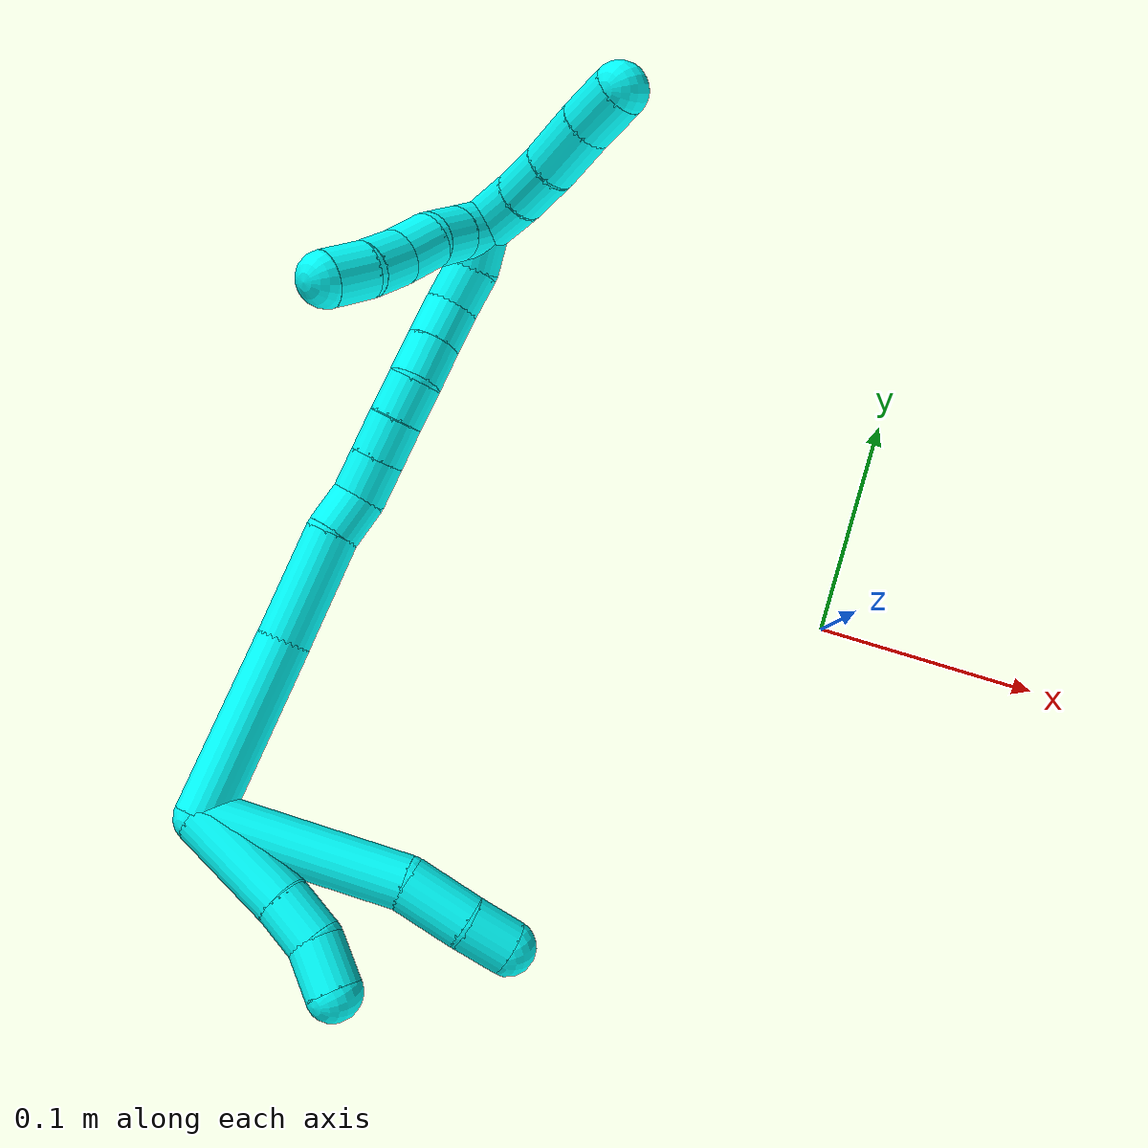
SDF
<sdf version="1.7">
 <world name="default">
  <model name="3">
   <static>0</static>
   <link name="3">
    <collision name="collision-cylinder-e_1_2_8">
     <pose>0.043577 0.004981 -0.019403 -2.89033 1.1399 -2.75246</pose>
     <geometry><cylinder><radius>0.0125</radius><length>0.095922</length></cylinder></geometry>
     <surface>
      <friction><ode><mu>1.16</mu><mu2>1.16</mu2><slip1>0</slip1><slip2>0</slip2></ode></friction>
      <contact><ode><kp>1e+06</kp><kd>1</kd><max_vel>0</max_vel><min_depth>0.001</min_depth></ode></contact>
     </surface>
    </collision>
    <visual name="visual-cylinder-e_1_2_8">
     <pose>0.043577 0.004981 -0.019403 -2.89033 1.1399 -2.75246</pose>
     <geometry><cylinder><radius>0.0125</radius><length>0.095922</length></cylinder></geometry>
     <material><ambient>0.003922 1 0.996078 1</ambient></material>
    </visual>
    <collision name="collision-cylinder-e_2_8_9">
     <pose>0.102071 0.007515 -0.043701 2.67805 1.21924 2.48978</pose>
     <geometry><cylinder><radius>0.0125</radius><length>0.031779</length></cylinder></geometry>
     <surface>
      <friction><ode><mu>1.16</mu><mu2>1.16</mu2><slip1>0</slip1><slip2>0</slip2></ode></friction>
      <contact><ode><kp>1e+06</kp><kd>1</kd><max_vel>0</max_vel><min_depth>0.001</min_depth></ode></contact>
     </surface>
    </collision>
    <visual name="visual-cylinder-e_2_8_9">
     <pose>0.102071 0.007515 -0.043701 2.67805 1.21924 2.48978</pose>
     <geometry><cylinder><radius>0.0125</radius><length>0.031779</length></cylinder></geometry>
     <material><ambient>0.003922 1 0.996078 1</ambient></material>
    </visual>
    <collision name="collision-cylinder-e_3_9_6">
     <pose>0.126772 0.002509 -0.053292 2.64262 1.07051 2.32994</pose>
     <geometry><cylinder><radius>0.0125</radius><length>0.022299</length></cylinder></geometry>
     <surface>
      <friction><ode><mu>1.16</mu><mu2>1.16</mu2><slip1>0</slip1><slip2>0</slip2></ode></friction>
      <contact><ode><kp>1e+06</kp><kd>1</kd><max_vel>0</max_vel><min_depth>0.001</min_depth></ode></contact>
     </surface>
    </collision>
    <visual name="visual-cylinder-e_3_9_6">
     <pose>0.126772 0.002509 -0.053292 2.64262 1.07051 2.32994</pose>
     <geometry><cylinder><radius>0.0125</radius><length>0.022299</length></cylinder></geometry>
     <material><ambient>0.003922 1 0.996078 1</ambient></material>
    </visual>
    <collision name="collision-cylinder-e_1_2_10">
     <pose>0.0265 -0.003639 -0.000748 1.77363 1.43152 1.63526</pose>
     <geometry><cylinder><radius>0.0125</radius><length>0.053519</length></cylinder></geometry>
     <surface>
      <friction><ode><mu>1.16</mu><mu2>1.16</mu2><slip1>0</slip1><slip2>0</slip2></ode></friction>
      <contact><ode><kp>1e+06</kp><kd>1</kd><max_vel>0</max_vel><min_depth>0.001</min_depth></ode></contact>
     </surface>
    </collision>
    <visual name="visual-cylinder-e_1_2_10">
     <pose>0.0265 -0.003639 -0.000748 1.77363 1.43152 1.63526</pose>
     <geometry><cylinder><radius>0.0125</radius><length>0.053519</length></cylinder></geometry>
     <material><ambient>0.003922 1 0.996078 1</ambient></material>
    </visual>
    <collision name="collision-cylinder-e_2_10_11">
     <pose>0.064219 -0.009768 -0.001286 1.48623 1.35159 1.2698</pose>
     <geometry><cylinder><radius>0.0125</radius><length>0.022987</length></cylinder></geometry>
     <surface>
      <friction><ode><mu>1.16</mu><mu2>1.16</mu2><slip1>0</slip1><slip2>0</slip2></ode></friction>
      <contact><ode><kp>1e+06</kp><kd>1</kd><max_vel>0</max_vel><min_depth>0.001</min_depth></ode></contact>
     </surface>
    </collision>
    <visual name="visual-cylinder-e_2_10_11">
     <pose>0.064219 -0.009768 -0.001286 1.48623 1.35159 1.2698</pose>
     <geometry><cylinder><radius>0.0125</radius><length>0.022987</length></cylinder></geometry>
     <material><ambient>0.003922 1 0.996078 1</ambient></material>
    </visual>
    <collision name="collision-cylinder-e_3_11_5">
     <pose>0.085776 -0.017138 0.00163 1.06472 1.07594 0.676015</pose>
     <geometry><cylinder><radius>0.0125</radius><length>0.023494</length></cylinder></geometry>
     <surface>
      <friction><ode><mu>1.16</mu><mu2>1.16</mu2><slip1>0</slip1><slip2>0</slip2></ode></friction>
      <contact><ode><kp>1e+06</kp><kd>1</kd><max_vel>0</max_vel><min_depth>0.001</min_depth></ode></contact>
     </surface>
    </collision>
    <visual name="visual-cylinder-e_3_11_5">
     <pose>0.085776 -0.017138 0.00163 1.06472 1.07594 0.676015</pose>
     <geometry><cylinder><radius>0.0125</radius><length>0.023494</length></cylinder></geometry>
     <material><ambient>0.003922 1 0.996078 1</ambient></material>
    </visual>
    <collision name="collision-cylinder-e_1_2_12">
     <pose>-0.011441 0.031924 -0.025971 -2.25373 -0.271159 0.558668</pose>
     <geometry><cylinder><radius>0.0125</radius><length>0.085429</length></cylinder></geometry>
     <surface>
      <friction><ode><mu>1.16</mu><mu2>1.16</mu2><slip1>0</slip1><slip2>0</slip2></ode></friction>
      <contact><ode><kp>1e+06</kp><kd>1</kd><max_vel>0</max_vel><min_depth>0.001</min_depth></ode></contact>
     </surface>
    </collision>
    <visual name="visual-cylinder-e_1_2_12">
     <pose>-0.011441 0.031924 -0.025971 -2.25373 -0.271159 0.558668</pose>
     <geometry><cylinder><radius>0.0125</radius><length>0.085429</length></cylinder></geometry>
     <material><ambient>0.003922 1 0.996078 1</ambient></material>
    </visual>
    <collision name="collision-cylinder-e_2_12_13">
     <pose>-0.02857 0.08603 -0.06599 -2.13537 -0.213327 0.384298</pose>
     <geometry><cylinder><radius>0.0125</radius><length>0.05373</length></cylinder></geometry>
     <surface>
      <friction><ode><mu>1.16</mu><mu2>1.16</mu2><slip1>0</slip1><slip2>0</slip2></ode></friction>
      <contact><ode><kp>1e+06</kp><kd>1</kd><max_vel>0</max_vel><min_depth>0.001</min_depth></ode></contact>
     </surface>
    </collision>
    <visual name="visual-cylinder-e_2_12_13">
     <pose>-0.02857 0.08603 -0.06599 -2.13537 -0.213327 0.384298</pose>
     <geometry><cylinder><radius>0.0125</radius><length>0.05373</length></cylinder></geometry>
     <material><ambient>0.003922 1 0.996078 1</ambient></material>
    </visual>
    <collision name="collision-cylinder-e_3_13_14">
     <pose>-0.035227 0.115662 -0.087139 -2.33209 -0.093942 0.21857</pose>
     <geometry><cylinder><radius>0.0125</radius><length>0.020674</length></cylinder></geometry>
     <surface>
      <friction><ode><mu>1.16</mu><mu2>1.16</mu2><slip1>0</slip1><slip2>0</slip2></ode></friction>
      <contact><ode><kp>1e+06</kp><kd>1</kd><max_vel>0</max_vel><min_depth>0.001</min_depth></ode></contact>
     </surface>
    </collision>
    <visual name="visual-cylinder-e_3_13_14">
     <pose>-0.035227 0.115662 -0.087139 -2.33209 -0.093942 0.21857</pose>
     <geometry><cylinder><radius>0.0125</radius><length>0.020674</length></cylinder></geometry>
     <material><ambient>0.003922 1 0.996078 1</ambient></material>
    </visual>
    <collision name="collision-cylinder-e_4_14_15">
     <pose>-0.037512 0.132016 -0.098682 -2.03368 -0.131445 0.21201</pose>
     <geometry><cylinder><radius>0.0125</radius><length>0.020075</length></cylinder></geometry>
     <surface>
      <friction><ode><mu>1.16</mu><mu2>1.16</mu2><slip1>0</slip1><slip2>0</slip2></ode></friction>
      <contact><ode><kp>1e+06</kp><kd>1</kd><max_vel>0</max_vel><min_depth>0.001</min_depth></ode></contact>
     </surface>
    </collision>
    <visual name="visual-cylinder-e_4_14_15">
     <pose>-0.037512 0.132016 -0.098682 -2.03368 -0.131445 0.21201</pose>
     <geometry><cylinder><radius>0.0125</radius><length>0.020075</length></cylinder></geometry>
     <material><ambient>0.003922 1 0.996078 1</ambient></material>
    </visual>
    <collision name="collision-cylinder-e_5_15_16">
     <pose>-0.040174 0.149808 -0.107563 -2.03391 -0.134635 0.217186</pose>
     <geometry><cylinder><radius>0.0125</radius><length>0.020049</length></cylinder></geometry>
     <surface>
      <friction><ode><mu>1.16</mu><mu2>1.16</mu2><slip1>0</slip1><slip2>0</slip2></ode></friction>
      <contact><ode><kp>1e+06</kp><kd>1</kd><max_vel>0</max_vel><min_depth>0.001</min_depth></ode></contact>
     </surface>
    </collision>
    <visual name="visual-cylinder-e_5_15_16">
     <pose>-0.040174 0.149808 -0.107563 -2.03391 -0.134635 0.217186</pose>
     <geometry><cylinder><radius>0.0125</radius><length>0.020049</length></cylinder></geometry>
     <material><ambient>0.003922 1 0.996078 1</ambient></material>
    </visual>
    <collision name="collision-cylinder-e_6_16_17">
     <pose>-0.042936 0.167344 -0.116853 -2.08209 -0.141949 0.241633</pose>
     <geometry><cylinder><radius>0.0125</radius><length>0.020037</length></cylinder></geometry>
     <surface>
      <friction><ode><mu>1.16</mu><mu2>1.16</mu2><slip1>0</slip1><slip2>0</slip2></ode></friction>
      <contact><ode><kp>1e+06</kp><kd>1</kd><max_vel>0</max_vel><min_depth>0.001</min_depth></ode></contact>
     </surface>
    </collision>
    <visual name="visual-cylinder-e_6_16_17">
     <pose>-0.042936 0.167344 -0.116853 -2.08209 -0.141949 0.241633</pose>
     <geometry><cylinder><radius>0.0125</radius><length>0.020037</length></cylinder></geometry>
     <material><ambient>0.003922 1 0.996078 1</ambient></material>
    </visual>
    <collision name="collision-cylinder-e_7_17_18">
     <pose>-0.046854 0.183509 -0.127811 -2.25304 -0.252743 0.521641</pose>
     <geometry><cylinder><radius>0.0125</radius><length>0.02</length></cylinder></geometry>
     <surface>
      <friction><ode><mu>1.16</mu><mu2>1.16</mu2><slip1>0</slip1><slip2>0</slip2></ode></friction>
      <contact><ode><kp>1e+06</kp><kd>1</kd><max_vel>0</max_vel><min_depth>0.001</min_depth></ode></contact>
     </surface>
    </collision>
    <visual name="visual-cylinder-e_7_17_18">
     <pose>-0.046854 0.183509 -0.127811 -2.25304 -0.252743 0.521641</pose>
     <geometry><cylinder><radius>0.0125</radius><length>0.02</length></cylinder></geometry>
     <material><ambient>0.003922 1 0.996078 1</ambient></material>
    </visual>
    <collision name="collision-cylinder-e_8_18_19">
     <pose>-0.05172 0.198463 -0.140168 -2.26963 -0.238716 0.503907</pose>
     <geometry><cylinder><radius>0.0125</radius><length>0.020002</length></cylinder></geometry>
     <surface>
      <friction><ode><mu>1.16</mu><mu2>1.16</mu2><slip1>0</slip1><slip2>0</slip2></ode></friction>
      <contact><ode><kp>1e+06</kp><kd>1</kd><max_vel>0</max_vel><min_depth>0.001</min_depth></ode></contact>
     </surface>
    </collision>
    <visual name="visual-cylinder-e_8_18_19">
     <pose>-0.05172 0.198463 -0.140168 -2.26963 -0.238716 0.503907</pose>
     <geometry><cylinder><radius>0.0125</radius><length>0.020002</length></cylinder></geometry>
     <material><ambient>0.003922 1 0.996078 1</ambient></material>
    </visual>
    <collision name="collision-cylinder-e_9_19_20">
     <pose>-0.05494 0.214719 -0.151062 -2.05553 -0.085685 0.141816</pose>
     <geometry><cylinder><radius>0.0125</radius><length>0.020001</length></cylinder></geometry>
     <surface>
      <friction><ode><mu>1.16</mu><mu2>1.16</mu2><slip1>0</slip1><slip2>0</slip2></ode></friction>
      <contact><ode><kp>1e+06</kp><kd>1</kd><max_vel>0</max_vel><min_depth>0.001</min_depth></ode></contact>
     </surface>
    </collision>
    <visual name="visual-cylinder-e_9_19_20">
     <pose>-0.05494 0.214719 -0.151062 -2.05553 -0.085685 0.141816</pose>
     <geometry><cylinder><radius>0.0125</radius><length>0.020001</length></cylinder></geometry>
     <material><ambient>0.003922 1 0.996078 1</ambient></material>
    </visual>
    <collision name="collision-cylinder-e_10_20_1">
     <pose>-0.057903 0.233034 -0.158016 -1.80943 -0.212276 0.269484</pose>
     <geometry><cylinder><radius>0.0125</radius><length>0.020003</length></cylinder></geometry>
     <surface>
      <friction><ode><mu>1.16</mu><mu2>1.16</mu2><slip1>0</slip1><slip2>0</slip2></ode></friction>
      <contact><ode><kp>1e+06</kp><kd>1</kd><max_vel>0</max_vel><min_depth>0.001</min_depth></ode></contact>
     </surface>
    </collision>
    <visual name="visual-cylinder-e_10_20_1">
     <pose>-0.057903 0.233034 -0.158016 -1.80943 -0.212276 0.269484</pose>
     <geometry><cylinder><radius>0.0125</radius><length>0.020003</length></cylinder></geometry>
     <material><ambient>0.003922 1 0.996078 1</ambient></material>
    </visual>
    <collision name="collision-cylinder-e_1_1_21">
     <pose>-0.052143 0.254415 -0.159265 -1.48169 0.583081 -0.535755</pose>
     <geometry><cylinder><radius>0.0125</radius><length>0.028579</length></cylinder></geometry>
     <surface>
      <friction><ode><mu>1.16</mu><mu2>1.16</mu2><slip1>0</slip1><slip2>0</slip2></ode></friction>
      <contact><ode><kp>1e+06</kp><kd>1</kd><max_vel>0</max_vel><min_depth>0.001</min_depth></ode></contact>
     </surface>
    </collision>
    <visual name="visual-cylinder-e_1_1_21">
     <pose>-0.052143 0.254415 -0.159265 -1.48169 0.583081 -0.535755</pose>
     <geometry><cylinder><radius>0.0125</radius><length>0.028579</length></cylinder></geometry>
     <material><ambient>0.003922 1 0.996078 1</ambient></material>
    </visual>
    <collision name="collision-cylinder-e_2_21_22">
     <pose>-0.038849 0.276012 -0.157514 -1.49995 0.508288 -0.474831</pose>
     <geometry><cylinder><radius>0.0125</radius><length>0.022298</length></cylinder></geometry>
     <surface>
      <friction><ode><mu>1.16</mu><mu2>1.16</mu2><slip1>0</slip1><slip2>0</slip2></ode></friction>
      <contact><ode><kp>1e+06</kp><kd>1</kd><max_vel>0</max_vel><min_depth>0.001</min_depth></ode></contact>
     </surface>
    </collision>
    <visual name="visual-cylinder-e_2_21_22">
     <pose>-0.038849 0.276012 -0.157514 -1.49995 0.508288 -0.474831</pose>
     <geometry><cylinder><radius>0.0125</radius><length>0.022298</length></cylinder></geometry>
     <material><ambient>0.003922 1 0.996078 1</ambient></material>
    </visual>
    <collision name="collision-cylinder-e_3_22_23">
     <pose>-0.027937 0.297871 -0.156633 -1.55503 0.424254 -0.417808</pose>
     <geometry><cylinder><radius>0.0125</radius><length>0.026655</length></cylinder></geometry>
     <surface>
      <friction><ode><mu>1.16</mu><mu2>1.16</mu2><slip1>0</slip1><slip2>0</slip2></ode></friction>
      <contact><ode><kp>1e+06</kp><kd>1</kd><max_vel>0</max_vel><min_depth>0.001</min_depth></ode></contact>
     </surface>
    </collision>
    <visual name="visual-cylinder-e_3_22_23">
     <pose>-0.027937 0.297871 -0.156633 -1.55503 0.424254 -0.417808</pose>
     <geometry><cylinder><radius>0.0125</radius><length>0.026655</length></cylinder></geometry>
     <material><ambient>0.003922 1 0.996078 1</ambient></material>
    </visual>
    <collision name="collision-cylinder-e_4_23_4">
     <pose>-0.017396 0.320048 -0.156368 -1.56345 0.466677 -0.463383</pose>
     <geometry><cylinder><radius>0.0125</radius><length>0.022468</length></cylinder></geometry>
     <surface>
      <friction><ode><mu>1.16</mu><mu2>1.16</mu2><slip1>0</slip1><slip2>0</slip2></ode></friction>
      <contact><ode><kp>1e+06</kp><kd>1</kd><max_vel>0</max_vel><min_depth>0.001</min_depth></ode></contact>
     </surface>
    </collision>
    <visual name="visual-cylinder-e_4_23_4">
     <pose>-0.017396 0.320048 -0.156368 -1.56345 0.466677 -0.463383</pose>
     <geometry><cylinder><radius>0.0125</radius><length>0.022468</length></cylinder></geometry>
     <material><ambient>0.003922 1 0.996078 1</ambient></material>
    </visual>
    <collision name="collision-cylinder-e_1_1_24">
     <pose>-0.059556 0.242064 -0.150348 0.047065 0.045473 0.00107</pose>
     <geometry><cylinder><radius>0.0125</radius><length>0.02</length></cylinder></geometry>
     <surface>
      <friction><ode><mu>1.16</mu><mu2>1.16</mu2><slip1>0</slip1><slip2>0</slip2></ode></friction>
      <contact><ode><kp>1e+06</kp><kd>1</kd><max_vel>0</max_vel><min_depth>0.001</min_depth></ode></contact>
     </surface>
    </collision>
    <visual name="visual-cylinder-e_1_1_24">
     <pose>-0.059556 0.242064 -0.150348 0.047065 0.045473 0.00107</pose>
     <geometry><cylinder><radius>0.0125</radius><length>0.02</length></cylinder></geometry>
     <material><ambient>0.003922 1 0.996078 1</ambient></material>
    </visual>
    <collision name="collision-cylinder-e_2_24_25">
     <pose>-0.0584 0.241399 -0.130396 0.01956 0.070241 0.000687</pose>
     <geometry><cylinder><radius>0.0125</radius><length>0.02</length></cylinder></geometry>
     <surface>
      <friction><ode><mu>1.16</mu><mu2>1.16</mu2><slip1>0</slip1><slip2>0</slip2></ode></friction>
      <contact><ode><kp>1e+06</kp><kd>1</kd><max_vel>0</max_vel><min_depth>0.001</min_depth></ode></contact>
     </surface>
    </collision>
    <visual name="visual-cylinder-e_2_24_25">
     <pose>-0.0584 0.241399 -0.130396 0.01956 0.070241 0.000687</pose>
     <geometry><cylinder><radius>0.0125</radius><length>0.02</length></cylinder></geometry>
     <material><ambient>0.003922 1 0.996078 1</ambient></material>
    </visual>
    <collision name="collision-cylinder-e_3_25_26">
     <pose>-0.057774 0.238006 -0.110948 0.325511 -0.007641 -0.001255</pose>
     <geometry><cylinder><radius>0.0125</radius><length>0.02</length></cylinder></geometry>
     <surface>
      <friction><ode><mu>1.16</mu><mu2>1.16</mu2><slip1>0</slip1><slip2>0</slip2></ode></friction>
      <contact><ode><kp>1e+06</kp><kd>1</kd><max_vel>0</max_vel><min_depth>0.001</min_depth></ode></contact>
     </surface>
    </collision>
    <visual name="visual-cylinder-e_3_25_26">
     <pose>-0.057774 0.238006 -0.110948 0.325511 -0.007641 -0.001255</pose>
     <geometry><cylinder><radius>0.0125</radius><length>0.02</length></cylinder></geometry>
     <material><ambient>0.003922 1 0.996078 1</ambient></material>
    </visual>
    <collision name="collision-cylinder-e_4_26_27">
     <pose>-0.057333 0.233364 -0.091592 0.145106 0.051801 0.003766</pose>
     <geometry><cylinder><radius>0.0125</radius><length>0.02</length></cylinder></geometry>
     <surface>
      <friction><ode><mu>1.16</mu><mu2>1.16</mu2><slip1>0</slip1><slip2>0</slip2></ode></friction>
      <contact><ode><kp>1e+06</kp><kd>1</kd><max_vel>0</max_vel><min_depth>0.001</min_depth></ode></contact>
     </surface>
    </collision>
    <visual name="visual-cylinder-e_4_26_27">
     <pose>-0.057333 0.233364 -0.091592 0.145106 0.051801 0.003766</pose>
     <geometry><cylinder><radius>0.0125</radius><length>0.02</length></cylinder></geometry>
     <material><ambient>0.003922 1 0.996078 1</ambient></material>
    </visual>
    <collision name="collision-cylinder-e_5_27_3">
     <pose>-0.058693 0.229933 -0.072092 0.203745 -0.188949 -0.019373</pose>
     <geometry><cylinder><radius>0.0125</radius><length>0.02</length></cylinder></geometry>
     <surface>
      <friction><ode><mu>1.16</mu><mu2>1.16</mu2><slip1>0</slip1><slip2>0</slip2></ode></friction>
      <contact><ode><kp>1e+06</kp><kd>1</kd><max_vel>0</max_vel><min_depth>0.001</min_depth></ode></contact>
     </surface>
    </collision>
    <visual name="visual-cylinder-e_5_27_3">
     <pose>-0.058693 0.229933 -0.072092 0.203745 -0.188949 -0.019373</pose>
     <geometry><cylinder><radius>0.0125</radius><length>0.02</length></cylinder></geometry>
     <material><ambient>0.003922 1 0.996078 1</ambient></material>
    </visual>
    <collision name="collision-sphere-3">
     <pose>-0.060571 0.227945 -0.062473 0 -0 0</pose>
     <geometry><sphere><radius>0.0125</radius></sphere></geometry>
     <surface>
      <friction><ode><mu>1.16</mu><mu2>1.16</mu2><slip1>0</slip1><slip2>0</slip2></ode></friction>
      <contact><ode><kp>1e+06</kp><kd>1</kd><max_vel>0</max_vel><min_depth>0.001</min_depth></ode></contact>
     </surface>
    </collision>
    <visual name="visual-sphere-3">
     <pose>-0.060571 0.227945 -0.062473 0 -0 0</pose>
     <geometry><sphere><radius>0.0125</radius></sphere></geometry>
     <material><ambient>0.003922 1 0.996078 1</ambient></material>
    </visual>
    <collision name="collision-sphere-27">
     <pose>-0.056815 0.23192 -0.08171 0 -0 0</pose>
     <geometry><sphere><radius>0.0125</radius></sphere></geometry>
     <surface>
      <friction><ode><mu>1.16</mu><mu2>1.16</mu2><slip1>0</slip1><slip2>0</slip2></ode></friction>
      <contact><ode><kp>1e+06</kp><kd>1</kd><max_vel>0</max_vel><min_depth>0.001</min_depth></ode></contact>
     </surface>
    </collision>
    <visual name="visual-sphere-27">
     <pose>-0.056815 0.23192 -0.08171 0 -0 0</pose>
     <geometry><sphere><radius>0.0125</radius></sphere></geometry>
     <material><ambient>0.003922 1 0.996078 1</ambient></material>
    </visual>
    <collision name="collision-sphere-26">
     <pose>-0.05785 0.234808 -0.101474 0 -0 0</pose>
     <geometry><sphere><radius>0.0125</radius></sphere></geometry>
     <surface>
      <friction><ode><mu>1.16</mu><mu2>1.16</mu2><slip1>0</slip1><slip2>0</slip2></ode></friction>
      <contact><ode><kp>1e+06</kp><kd>1</kd><max_vel>0</max_vel><min_depth>0.001</min_depth></ode></contact>
     </surface>
    </collision>
    <visual name="visual-sphere-26">
     <pose>-0.05785 0.234808 -0.101474 0 -0 0</pose>
     <geometry><sphere><radius>0.0125</radius></sphere></geometry>
     <material><ambient>0.003922 1 0.996078 1</ambient></material>
    </visual>
    <collision name="collision-sphere-25">
     <pose>-0.057698 0.241204 -0.120423 0 -0 0</pose>
     <geometry><sphere><radius>0.0125</radius></sphere></geometry>
     <surface>
      <friction><ode><mu>1.16</mu><mu2>1.16</mu2><slip1>0</slip1><slip2>0</slip2></ode></friction>
      <contact><ode><kp>1e+06</kp><kd>1</kd><max_vel>0</max_vel><min_depth>0.001</min_depth></ode></contact>
     </surface>
    </collision>
    <visual name="visual-sphere-25">
     <pose>-0.057698 0.241204 -0.120423 0 -0 0</pose>
     <geometry><sphere><radius>0.0125</radius></sphere></geometry>
     <material><ambient>0.003922 1 0.996078 1</ambient></material>
    </visual>
    <collision name="collision-sphere-24">
     <pose>-0.059101 0.241594 -0.14037 0 -0 0</pose>
     <geometry><sphere><radius>0.0125</radius></sphere></geometry>
     <surface>
      <friction><ode><mu>1.16</mu><mu2>1.16</mu2><slip1>0</slip1><slip2>0</slip2></ode></friction>
      <contact><ode><kp>1e+06</kp><kd>1</kd><max_vel>0</max_vel><min_depth>0.001</min_depth></ode></contact>
     </surface>
    </collision>
    <visual name="visual-sphere-24">
     <pose>-0.059101 0.241594 -0.14037 0 -0 0</pose>
     <geometry><sphere><radius>0.0125</radius></sphere></geometry>
     <material><ambient>0.003922 1 0.996078 1</ambient></material>
    </visual>
    <collision name="collision-sphere-4">
     <pose>-0.012342 0.33008 -0.156294 0 -0 0</pose>
     <geometry><sphere><radius>0.0125</radius></sphere></geometry>
     <surface>
      <friction><ode><mu>1.16</mu><mu2>1.16</mu2><slip1>0</slip1><slip2>0</slip2></ode></friction>
      <contact><ode><kp>1e+06</kp><kd>1</kd><max_vel>0</max_vel><min_depth>0.001</min_depth></ode></contact>
     </surface>
    </collision>
    <visual name="visual-sphere-4">
     <pose>-0.012342 0.33008 -0.156294 0 -0 0</pose>
     <geometry><sphere><radius>0.0125</radius></sphere></geometry>
     <material><ambient>0.003922 1 0.996078 1</ambient></material>
    </visual>
    <collision name="collision-sphere-23">
     <pose>-0.022451 0.310015 -0.156442 0 -0 0</pose>
     <geometry><sphere><radius>0.0125</radius></sphere></geometry>
     <surface>
      <friction><ode><mu>1.16</mu><mu2>1.16</mu2><slip1>0</slip1><slip2>0</slip2></ode></friction>
      <contact><ode><kp>1e+06</kp><kd>1</kd><max_vel>0</max_vel><min_depth>0.001</min_depth></ode></contact>
     </surface>
    </collision>
    <visual name="visual-sphere-23">
     <pose>-0.022451 0.310015 -0.156442 0 -0 0</pose>
     <geometry><sphere><radius>0.0125</radius></sphere></geometry>
     <material><ambient>0.003922 1 0.996078 1</ambient></material>
    </visual>
    <collision name="collision-sphere-22">
     <pose>-0.033423 0.285727 -0.156825 0 -0 0</pose>
     <geometry><sphere><radius>0.0125</radius></sphere></geometry>
     <surface>
      <friction><ode><mu>1.16</mu><mu2>1.16</mu2><slip1>0</slip1><slip2>0</slip2></ode></friction>
      <contact><ode><kp>1e+06</kp><kd>1</kd><max_vel>0</max_vel><min_depth>0.001</min_depth></ode></contact>
     </surface>
    </collision>
    <visual name="visual-sphere-22">
     <pose>-0.033423 0.285727 -0.156825 0 -0 0</pose>
     <geometry><sphere><radius>0.0125</radius></sphere></geometry>
     <material><ambient>0.003922 1 0.996078 1</ambient></material>
    </visual>
    <collision name="collision-sphere-21">
     <pose>-0.044275 0.266296 -0.158204 0 -0 0</pose>
     <geometry><sphere><radius>0.0125</radius></sphere></geometry>
     <surface>
      <friction><ode><mu>1.16</mu><mu2>1.16</mu2><slip1>0</slip1><slip2>0</slip2></ode></friction>
      <contact><ode><kp>1e+06</kp><kd>1</kd><max_vel>0</max_vel><min_depth>0.001</min_depth></ode></contact>
     </surface>
    </collision>
    <visual name="visual-sphere-21">
     <pose>-0.044275 0.266296 -0.158204 0 -0 0</pose>
     <geometry><sphere><radius>0.0125</radius></sphere></geometry>
     <material><ambient>0.003922 1 0.996078 1</ambient></material>
    </visual>
    <collision name="collision-sphere-1">
     <pose>-0.06001 0.242534 -0.160327 0 -0 0</pose>
     <geometry><sphere><radius>0.0125</radius></sphere></geometry>
     <surface>
      <friction><ode><mu>1.16</mu><mu2>1.16</mu2><slip1>0</slip1><slip2>0</slip2></ode></friction>
      <contact><ode><kp>1e+06</kp><kd>1</kd><max_vel>0</max_vel><min_depth>0.001</min_depth></ode></contact>
     </surface>
    </collision>
    <visual name="visual-sphere-1">
     <pose>-0.06001 0.242534 -0.160327 0 -0 0</pose>
     <geometry><sphere><radius>0.0125</radius></sphere></geometry>
     <material><ambient>0.003922 1 0.996078 1</ambient></material>
    </visual>
    <collision name="collision-sphere-11">
     <pose>0.075438 -0.012258 -0.001075 0 -0 0</pose>
     <geometry><sphere><radius>0.0125</radius></sphere></geometry>
     <surface>
      <friction><ode><mu>1.16</mu><mu2>1.16</mu2><slip1>0</slip1><slip2>0</slip2></ode></friction>
      <contact><ode><kp>1e+06</kp><kd>1</kd><max_vel>0</max_vel><min_depth>0.001</min_depth></ode></contact>
     </surface>
    </collision>
    <visual name="visual-sphere-11">
     <pose>0.075438 -0.012258 -0.001075 0 -0 0</pose>
     <geometry><sphere><radius>0.0125</radius></sphere></geometry>
     <material><ambient>0.003922 1 0.996078 1</ambient></material>
    </visual>
    <collision name="collision-sphere-10">
     <pose>0.053001 -0.007278 -0.001497 0 -0 0</pose>
     <geometry><sphere><radius>0.0125</radius></sphere></geometry>
     <surface>
      <friction><ode><mu>1.16</mu><mu2>1.16</mu2><slip1>0</slip1><slip2>0</slip2></ode></friction>
      <contact><ode><kp>1e+06</kp><kd>1</kd><max_vel>0</max_vel><min_depth>0.001</min_depth></ode></contact>
     </surface>
    </collision>
    <visual name="visual-sphere-10">
     <pose>0.053001 -0.007278 -0.001497 0 -0 0</pose>
     <geometry><sphere><radius>0.0125</radius></sphere></geometry>
     <material><ambient>0.003922 1 0.996078 1</ambient></material>
    </visual>
    <collision name="collision-sphere-6">
     <pose>0.136555 -5e-05 -0.057988 0 -0 0</pose>
     <geometry><sphere><radius>0.0125</radius></sphere></geometry>
     <surface>
      <friction><ode><mu>1.16</mu><mu2>1.16</mu2><slip1>0</slip1><slip2>0</slip2></ode></friction>
      <contact><ode><kp>1e+06</kp><kd>1</kd><max_vel>0</max_vel><min_depth>0.001</min_depth></ode></contact>
     </surface>
    </collision>
    <visual name="visual-sphere-6">
     <pose>0.136555 -5e-05 -0.057988 0 -0 0</pose>
     <geometry><sphere><radius>0.0125</radius></sphere></geometry>
     <material><ambient>0.003922 1 0.996078 1</ambient></material>
    </visual>
    <collision name="collision-sphere-9">
     <pose>0.116989 0.005068 -0.048595 0 -0 0</pose>
     <geometry><sphere><radius>0.0125</radius></sphere></geometry>
     <surface>
      <friction><ode><mu>1.16</mu><mu2>1.16</mu2><slip1>0</slip1><slip2>0</slip2></ode></friction>
      <contact><ode><kp>1e+06</kp><kd>1</kd><max_vel>0</max_vel><min_depth>0.001</min_depth></ode></contact>
     </surface>
    </collision>
    <visual name="visual-sphere-9">
     <pose>0.116989 0.005068 -0.048595 0 -0 0</pose>
     <geometry><sphere><radius>0.0125</radius></sphere></geometry>
     <material><ambient>0.003922 1 0.996078 1</ambient></material>
    </visual>
    <collision name="collision-sphere-2">
     <geometry><sphere><radius>0.0125</radius></sphere></geometry>
     <surface>
      <friction><ode><mu>1.16</mu><mu2>1.16</mu2><slip1>0</slip1><slip2>0</slip2></ode></friction>
      <contact><ode><kp>1e+06</kp><kd>1</kd><max_vel>0</max_vel><min_depth>0.001</min_depth></ode></contact>
     </surface>
    </collision>
    <visual name="visual-sphere-2">
     <geometry><sphere><radius>0.0125</radius></sphere></geometry>
     <material><ambient>0.003922 1 0.996078 1</ambient></material>
    </visual>
    <collision name="collision-sphere-19">
     <pose>-0.054085 0.205903 -0.146419 0 -0 0</pose>
     <geometry><sphere><radius>0.0125</radius></sphere></geometry>
     <surface>
      <friction><ode><mu>1.16</mu><mu2>1.16</mu2><slip1>0</slip1><slip2>0</slip2></ode></friction>
      <contact><ode><kp>1e+06</kp><kd>1</kd><max_vel>0</max_vel><min_depth>0.001</min_depth></ode></contact>
     </surface>
    </collision>
    <visual name="visual-sphere-19">
     <pose>-0.054085 0.205903 -0.146419 0 -0 0</pose>
     <geometry><sphere><radius>0.0125</radius></sphere></geometry>
     <material><ambient>0.003922 1 0.996078 1</ambient></material>
    </visual>
    <collision name="collision-sphere-8">
     <pose>0.087154 0.009961 -0.038807 0 -0 0</pose>
     <geometry><sphere><radius>0.0125</radius></sphere></geometry>
     <surface>
      <friction><ode><mu>1.16</mu><mu2>1.16</mu2><slip1>0</slip1><slip2>0</slip2></ode></friction>
      <contact><ode><kp>1e+06</kp><kd>1</kd><max_vel>0</max_vel><min_depth>0.001</min_depth></ode></contact>
     </surface>
    </collision>
    <visual name="visual-sphere-8">
     <pose>0.087154 0.009961 -0.038807 0 -0 0</pose>
     <geometry><sphere><radius>0.0125</radius></sphere></geometry>
     <material><ambient>0.003922 1 0.996078 1</ambient></material>
    </visual>
    <collision name="collision-sphere-5">
     <pose>0.096113 -0.022017 0.004334 0 -0 0</pose>
     <geometry><sphere><radius>0.0125</radius></sphere></geometry>
     <surface>
      <friction><ode><mu>1.16</mu><mu2>1.16</mu2><slip1>0</slip1><slip2>0</slip2></ode></friction>
      <contact><ode><kp>1e+06</kp><kd>1</kd><max_vel>0</max_vel><min_depth>0.001</min_depth></ode></contact>
     </surface>
    </collision>
    <visual name="visual-sphere-5">
     <pose>0.096113 -0.022017 0.004334 0 -0 0</pose>
     <geometry><sphere><radius>0.0125</radius></sphere></geometry>
     <material><ambient>0.003922 1 0.996078 1</ambient></material>
    </visual>
    <collision name="collision-sphere-12">
     <pose>-0.022882 0.063848 -0.051942 0 -0 0</pose>
     <geometry><sphere><radius>0.0125</radius></sphere></geometry>
     <surface>
      <friction><ode><mu>1.16</mu><mu2>1.16</mu2><slip1>0</slip1><slip2>0</slip2></ode></friction>
      <contact><ode><kp>1e+06</kp><kd>1</kd><max_vel>0</max_vel><min_depth>0.001</min_depth></ode></contact>
     </surface>
    </collision>
    <visual name="visual-sphere-12">
     <pose>-0.022882 0.063848 -0.051942 0 -0 0</pose>
     <geometry><sphere><radius>0.0125</radius></sphere></geometry>
     <material><ambient>0.003922 1 0.996078 1</ambient></material>
    </visual>
    <collision name="collision-sphere-13">
     <pose>-0.034257 0.108212 -0.080039 0 -0 0</pose>
     <geometry><sphere><radius>0.0125</radius></sphere></geometry>
     <surface>
      <friction><ode><mu>1.16</mu><mu2>1.16</mu2><slip1>0</slip1><slip2>0</slip2></ode></friction>
      <contact><ode><kp>1e+06</kp><kd>1</kd><max_vel>0</max_vel><min_depth>0.001</min_depth></ode></contact>
     </surface>
    </collision>
    <visual name="visual-sphere-13">
     <pose>-0.034257 0.108212 -0.080039 0 -0 0</pose>
     <geometry><sphere><radius>0.0125</radius></sphere></geometry>
     <material><ambient>0.003922 1 0.996078 1</ambient></material>
    </visual>
    <collision name="collision-sphere-14">
     <pose>-0.036197 0.123113 -0.094238 0 -0 0</pose>
     <geometry><sphere><radius>0.0125</radius></sphere></geometry>
     <surface>
      <friction><ode><mu>1.16</mu><mu2>1.16</mu2><slip1>0</slip1><slip2>0</slip2></ode></friction>
      <contact><ode><kp>1e+06</kp><kd>1</kd><max_vel>0</max_vel><min_depth>0.001</min_depth></ode></contact>
     </surface>
    </collision>
    <visual name="visual-sphere-14">
     <pose>-0.036197 0.123113 -0.094238 0 -0 0</pose>
     <geometry><sphere><radius>0.0125</radius></sphere></geometry>
     <material><ambient>0.003922 1 0.996078 1</ambient></material>
    </visual>
    <collision name="collision-sphere-15">
     <pose>-0.038828 0.14092 -0.103125 0 -0 0</pose>
     <geometry><sphere><radius>0.0125</radius></sphere></geometry>
     <surface>
      <friction><ode><mu>1.16</mu><mu2>1.16</mu2><slip1>0</slip1><slip2>0</slip2></ode></friction>
      <contact><ode><kp>1e+06</kp><kd>1</kd><max_vel>0</max_vel><min_depth>0.001</min_depth></ode></contact>
     </surface>
    </collision>
    <visual name="visual-sphere-15">
     <pose>-0.038828 0.14092 -0.103125 0 -0 0</pose>
     <geometry><sphere><radius>0.0125</radius></sphere></geometry>
     <material><ambient>0.003922 1 0.996078 1</ambient></material>
    </visual>
    <collision name="collision-sphere-16">
     <pose>-0.041519 0.158695 -0.112001 0 -0 0</pose>
     <geometry><sphere><radius>0.0125</radius></sphere></geometry>
     <surface>
      <friction><ode><mu>1.16</mu><mu2>1.16</mu2><slip1>0</slip1><slip2>0</slip2></ode></friction>
      <contact><ode><kp>1e+06</kp><kd>1</kd><max_vel>0</max_vel><min_depth>0.001</min_depth></ode></contact>
     </surface>
    </collision>
    <visual name="visual-sphere-16">
     <pose>-0.041519 0.158695 -0.112001 0 -0 0</pose>
     <geometry><sphere><radius>0.0125</radius></sphere></geometry>
     <material><ambient>0.003922 1 0.996078 1</ambient></material>
    </visual>
    <collision name="collision-sphere-17">
     <pose>-0.044354 0.175994 -0.121706 0 -0 0</pose>
     <geometry><sphere><radius>0.0125</radius></sphere></geometry>
     <surface>
      <friction><ode><mu>1.16</mu><mu2>1.16</mu2><slip1>0</slip1><slip2>0</slip2></ode></friction>
      <contact><ode><kp>1e+06</kp><kd>1</kd><max_vel>0</max_vel><min_depth>0.001</min_depth></ode></contact>
     </surface>
    </collision>
    <visual name="visual-sphere-17">
     <pose>-0.044354 0.175994 -0.121706 0 -0 0</pose>
     <geometry><sphere><radius>0.0125</radius></sphere></geometry>
     <material><ambient>0.003922 1 0.996078 1</ambient></material>
    </visual>
    <collision name="collision-sphere-18">
     <pose>-0.049355 0.191024 -0.133917 0 -0 0</pose>
     <geometry><sphere><radius>0.0125</radius></sphere></geometry>
     <surface>
      <friction><ode><mu>1.16</mu><mu2>1.16</mu2><slip1>0</slip1><slip2>0</slip2></ode></friction>
      <contact><ode><kp>1e+06</kp><kd>1</kd><max_vel>0</max_vel><min_depth>0.001</min_depth></ode></contact>
     </surface>
    </collision>
    <visual name="visual-sphere-18">
     <pose>-0.049355 0.191024 -0.133917 0 -0 0</pose>
     <geometry><sphere><radius>0.0125</radius></sphere></geometry>
     <material><ambient>0.003922 1 0.996078 1</ambient></material>
    </visual>
    <collision name="collision-sphere-20">
     <pose>-0.055796 0.223534 -0.155705 0 -0 0</pose>
     <geometry><sphere><radius>0.0125</radius></sphere></geometry>
     <surface>
      <friction><ode><mu>1.16</mu><mu2>1.16</mu2><slip1>0</slip1><slip2>0</slip2></ode></friction>
      <contact><ode><kp>1e+06</kp><kd>1</kd><max_vel>0</max_vel><min_depth>0.001</min_depth></ode></contact>
     </surface>
    </collision>
    <visual name="visual-sphere-20">
     <pose>-0.055796 0.223534 -0.155705 0 -0 0</pose>
     <geometry><sphere><radius>0.0125</radius></sphere></geometry>
     <material><ambient>0.003922 1 0.996078 1</ambient></material>
    </visual>
    <inertial>
     <pose>-0.005407 0.116727 -0.075888 0 -0 0</pose>
     <mass>0.75</mass>
     <inertia>
      <ixx>9.6e-05</ixx>
      <ixy>0</ixy>
      <ixz>0</ixz>
      <iyy>0.000122</iyy>
      <iyz>0</iyz>
      <izz>-0.000161</izz>
     </inertia>
    </inertial>
   </link>
   <pose>-0.244239 -0.161522 0.018595 0.670891 -0.271947 -0.354287</pose>
  </model>
 </world>
</sdf>
